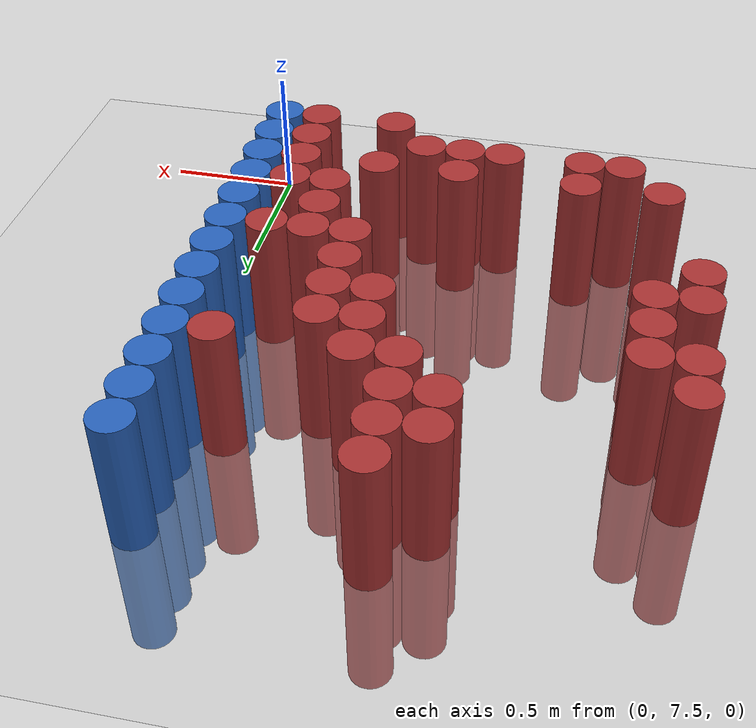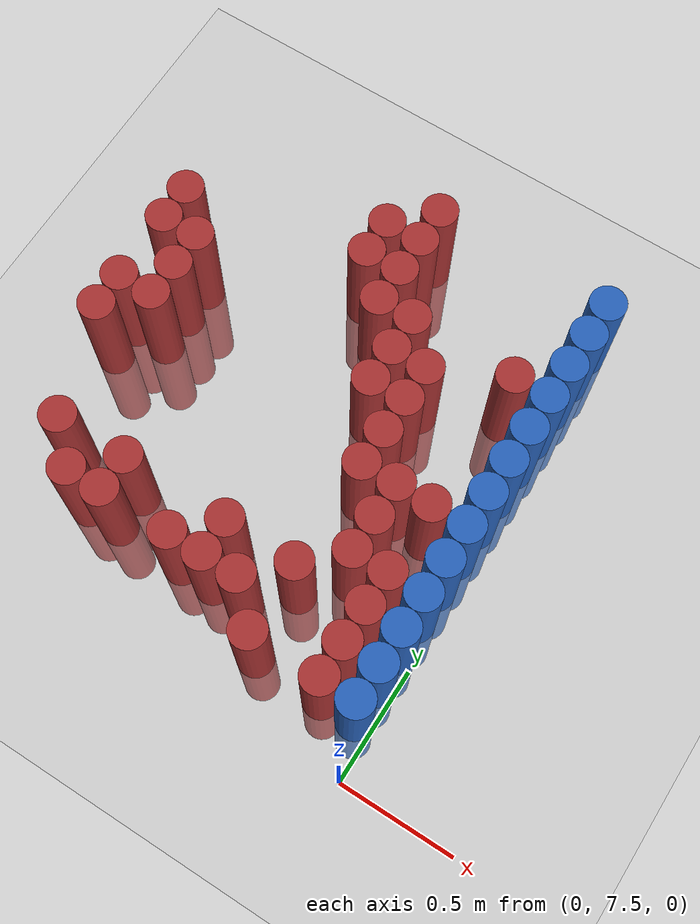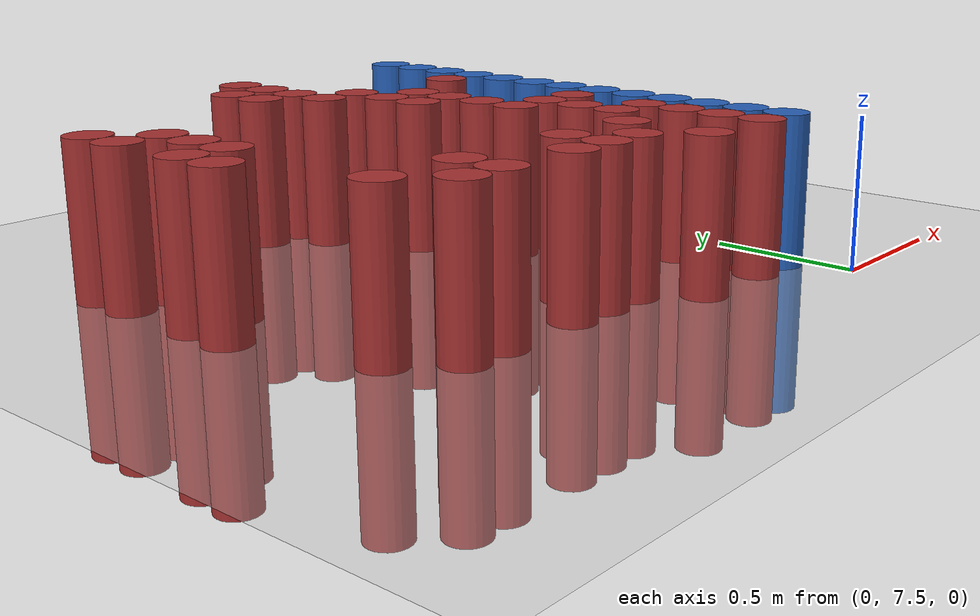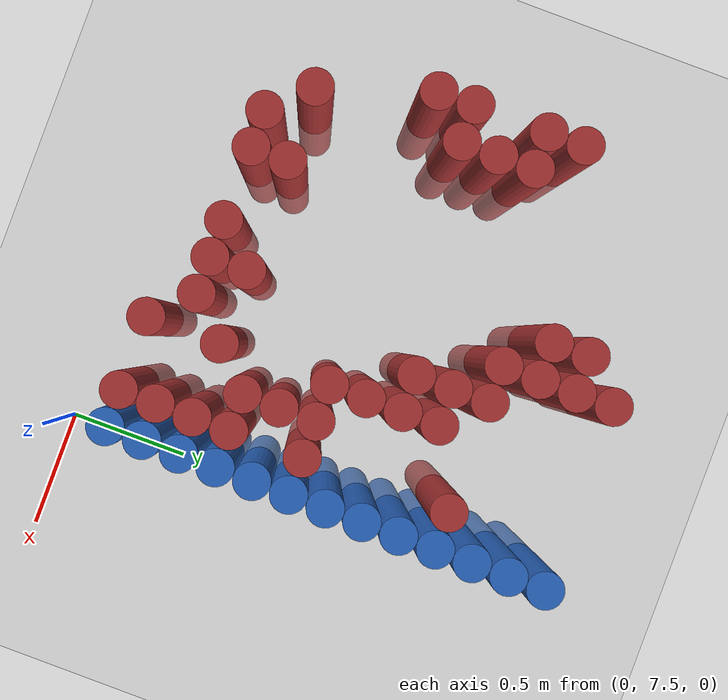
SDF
<sdf version="1.6">
 <world name="default">
  <model name="ground_plane">
   <static>1</static>
   <link name="link">
    <collision name="collision">
     <geometry><plane><normal>0 0 1</normal><size>100 100</size></plane></geometry>
     <surface><friction><ode><mu>100</mu><mu2>50</mu2></ode></friction></surface>
    </collision>
    <visual name="visual">
     <cast_shadows>0</cast_shadows>
     <geometry><plane><normal>0 0 1</normal><size>100 100</size></plane></geometry>
     <material>
      <script><uri>file://media/materials/scripts/gazebo.material</uri><name>Gazebo/Grey</name></script>
     </material>
    </visual>
   </link>
  </model>
  <model name="unit_cylinder_240">
   <static>1</static>
   <pose>-1.725000 8.475000 0.000000 0.000000 0.000000 0.000000</pose>
   <link name="link">
    <inertial>
     <mass>1</mass>
     <inertia><ixx>0.145833</ixx><ixy>0</ixy><ixz>0</ixz><iyy>0.145833</iyy><iyz>0</iyz><izz>0.125</izz></inertia>
    </inertial>
    <collision name="collision">
     <geometry><cylinder><radius>0.075000</radius><length>1</length></cylinder></geometry>
    </collision>
    <visual name="visual">
     <geometry><cylinder><radius>0.075000</radius><length>1</length></cylinder></geometry>
     <material>
      <ambient>0.648000 0.192000 0.192000 1</ambient>
      <diffuse>0.648000 0.192000 0.192000 1</diffuse>
     </material>
     <material>
      <script><name>Gazebo/Grey</name><uri>file://media/materials/scripts/gazebo.material</uri></script>
     </material>
    </visual>
   </link>
  </model>
  <model name="unit_cylinder_241">
   <static>1</static>
   <pose>-1.725000 8.625000 0.000000 0.000000 0.000000 0.000000</pose>
   <link name="link">
    <inertial>
     <mass>1</mass>
     <inertia><ixx>0.145833</ixx><ixy>0</ixy><ixz>0</ixz><iyy>0.145833</iyy><iyz>0</iyz><izz>0.125</izz></inertia>
    </inertial>
    <collision name="collision">
     <geometry><cylinder><radius>0.075000</radius><length>1</length></cylinder></geometry>
    </collision>
    <visual name="visual">
     <geometry><cylinder><radius>0.075000</radius><length>1</length></cylinder></geometry>
     <material>
      <ambient>0.648000 0.192000 0.192000 1</ambient>
      <diffuse>0.648000 0.192000 0.192000 1</diffuse>
     </material>
     <material>
      <script><name>Gazebo/Grey</name><uri>file://media/materials/scripts/gazebo.material</uri></script>
     </material>
    </visual>
   </link>
  </model>
  <model name="unit_cylinder_242">
   <static>1</static>
   <pose>-1.725000 8.925000 0.000000 0.000000 0.000000 0.000000</pose>
   <link name="link">
    <inertial>
     <mass>1</mass>
     <inertia><ixx>0.145833</ixx><ixy>0</ixy><ixz>0</ixz><iyy>0.145833</iyy><iyz>0</iyz><izz>0.125</izz></inertia>
    </inertial>
    <collision name="collision">
     <geometry><cylinder><radius>0.075000</radius><length>1</length></cylinder></geometry>
    </collision>
    <visual name="visual">
     <geometry><cylinder><radius>0.075000</radius><length>1</length></cylinder></geometry>
     <material>
      <ambient>0.648000 0.192000 0.192000 1</ambient>
      <diffuse>0.648000 0.192000 0.192000 1</diffuse>
     </material>
     <material>
      <script><name>Gazebo/Grey</name><uri>file://media/materials/scripts/gazebo.material</uri></script>
     </material>
    </visual>
   </link>
  </model>
  <model name="unit_cylinder_243">
   <static>1</static>
   <pose>-1.725000 9.075000 0.000000 0.000000 0.000000 0.000000</pose>
   <link name="link">
    <inertial>
     <mass>1</mass>
     <inertia><ixx>0.145833</ixx><ixy>0</ixy><ixz>0</ixz><iyy>0.145833</iyy><iyz>0</iyz><izz>0.125</izz></inertia>
    </inertial>
    <collision name="collision">
     <geometry><cylinder><radius>0.075000</radius><length>1</length></cylinder></geometry>
    </collision>
    <visual name="visual">
     <geometry><cylinder><radius>0.075000</radius><length>1</length></cylinder></geometry>
     <material>
      <ambient>0.648000 0.192000 0.192000 1</ambient>
      <diffuse>0.648000 0.192000 0.192000 1</diffuse>
     </material>
     <material>
      <script><name>Gazebo/Grey</name><uri>file://media/materials/scripts/gazebo.material</uri></script>
     </material>
    </visual>
   </link>
  </model>
  <model name="unit_cylinder_246">
   <static>1</static>
   <pose>-1.575000 8.025000 0.000000 0.000000 0.000000 0.000000</pose>
   <link name="link">
    <inertial>
     <mass>1</mass>
     <inertia><ixx>0.145833</ixx><ixy>0</ixy><ixz>0</ixz><iyy>0.145833</iyy><iyz>0</iyz><izz>0.125</izz></inertia>
    </inertial>
    <collision name="collision">
     <geometry><cylinder><radius>0.075000</radius><length>1</length></cylinder></geometry>
    </collision>
    <visual name="visual">
     <geometry><cylinder><radius>0.075000</radius><length>1</length></cylinder></geometry>
     <material>
      <ambient>0.648000 0.192000 0.192000 1</ambient>
      <diffuse>0.648000 0.192000 0.192000 1</diffuse>
     </material>
     <material>
      <script><name>Gazebo/Grey</name><uri>file://media/materials/scripts/gazebo.material</uri></script>
     </material>
    </visual>
   </link>
  </model>
  <model name="unit_cylinder_247">
   <static>1</static>
   <pose>-1.575000 8.625000 0.000000 0.000000 0.000000 0.000000</pose>
   <link name="link">
    <inertial>
     <mass>1</mass>
     <inertia><ixx>0.145833</ixx><ixy>0</ixy><ixz>0</ixz><iyy>0.145833</iyy><iyz>0</iyz><izz>0.125</izz></inertia>
    </inertial>
    <collision name="collision">
     <geometry><cylinder><radius>0.075000</radius><length>1</length></cylinder></geometry>
    </collision>
    <visual name="visual">
     <geometry><cylinder><radius>0.075000</radius><length>1</length></cylinder></geometry>
     <material>
      <ambient>0.648000 0.192000 0.192000 1</ambient>
      <diffuse>0.648000 0.192000 0.192000 1</diffuse>
     </material>
     <material>
      <script><name>Gazebo/Grey</name><uri>file://media/materials/scripts/gazebo.material</uri></script>
     </material>
    </visual>
   </link>
  </model>
  <model name="unit_cylinder_248">
   <static>1</static>
   <pose>-1.575000 8.775000 0.000000 0.000000 0.000000 0.000000</pose>
   <link name="link">
    <inertial>
     <mass>1</mass>
     <inertia><ixx>0.145833</ixx><ixy>0</ixy><ixz>0</ixz><iyy>0.145833</iyy><iyz>0</iyz><izz>0.125</izz></inertia>
    </inertial>
    <collision name="collision">
     <geometry><cylinder><radius>0.075000</radius><length>1</length></cylinder></geometry>
    </collision>
    <visual name="visual">
     <geometry><cylinder><radius>0.075000</radius><length>1</length></cylinder></geometry>
     <material>
      <ambient>0.648000 0.192000 0.192000 1</ambient>
      <diffuse>0.648000 0.192000 0.192000 1</diffuse>
     </material>
     <material>
      <script><name>Gazebo/Grey</name><uri>file://media/materials/scripts/gazebo.material</uri></script>
     </material>
    </visual>
   </link>
  </model>
  <model name="unit_cylinder_249">
   <static>1</static>
   <pose>-1.575000 8.925000 0.000000 0.000000 0.000000 0.000000</pose>
   <link name="link">
    <inertial>
     <mass>1</mass>
     <inertia><ixx>0.145833</ixx><ixy>0</ixy><ixz>0</ixz><iyy>0.145833</iyy><iyz>0</iyz><izz>0.125</izz></inertia>
    </inertial>
    <collision name="collision">
     <geometry><cylinder><radius>0.075000</radius><length>1</length></cylinder></geometry>
    </collision>
    <visual name="visual">
     <geometry><cylinder><radius>0.075000</radius><length>1</length></cylinder></geometry>
     <material>
      <ambient>0.648000 0.192000 0.192000 1</ambient>
      <diffuse>0.648000 0.192000 0.192000 1</diffuse>
     </material>
     <material>
      <script><name>Gazebo/Grey</name><uri>file://media/materials/scripts/gazebo.material</uri></script>
     </material>
    </visual>
   </link>
  </model>
  <model name="unit_cylinder_252">
   <static>1</static>
   <pose>-1.425000 7.875000 0.000000 0.000000 0.000000 0.000000</pose>
   <link name="link">
    <inertial>
     <mass>1</mass>
     <inertia><ixx>0.145833</ixx><ixy>0</ixy><ixz>0</ixz><iyy>0.145833</iyy><iyz>0</iyz><izz>0.125</izz></inertia>
    </inertial>
    <collision name="collision">
     <geometry><cylinder><radius>0.075000</radius><length>1</length></cylinder></geometry>
    </collision>
    <visual name="visual">
     <geometry><cylinder><radius>0.075000</radius><length>1</length></cylinder></geometry>
     <material>
      <ambient>0.648000 0.192000 0.192000 1</ambient>
      <diffuse>0.648000 0.192000 0.192000 1</diffuse>
     </material>
     <material>
      <script><name>Gazebo/Grey</name><uri>file://media/materials/scripts/gazebo.material</uri></script>
     </material>
    </visual>
   </link>
  </model>
  <model name="unit_cylinder_256">
   <static>1</static>
   <pose>-1.275000 7.875000 0.000000 0.000000 0.000000 0.000000</pose>
   <link name="link">
    <inertial>
     <mass>1</mass>
     <inertia><ixx>0.145833</ixx><ixy>0</ixy><ixz>0</ixz><iyy>0.145833</iyy><iyz>0</iyz><izz>0.125</izz></inertia>
    </inertial>
    <collision name="collision">
     <geometry><cylinder><radius>0.075000</radius><length>1</length></cylinder></geometry>
    </collision>
    <visual name="visual">
     <geometry><cylinder><radius>0.075000</radius><length>1</length></cylinder></geometry>
     <material>
      <ambient>0.648000 0.192000 0.192000 1</ambient>
      <diffuse>0.648000 0.192000 0.192000 1</diffuse>
     </material>
     <material>
      <script><name>Gazebo/Grey</name><uri>file://media/materials/scripts/gazebo.material</uri></script>
     </material>
    </visual>
   </link>
  </model>
  <model name="unit_cylinder_257">
   <static>1</static>
   <pose>-1.275000 8.025000 0.000000 0.000000 0.000000 0.000000</pose>
   <link name="link">
    <inertial>
     <mass>1</mass>
     <inertia><ixx>0.145833</ixx><ixy>0</ixy><ixz>0</ixz><iyy>0.145833</iyy><iyz>0</iyz><izz>0.125</izz></inertia>
    </inertial>
    <collision name="collision">
     <geometry><cylinder><radius>0.075000</radius><length>1</length></cylinder></geometry>
    </collision>
    <visual name="visual">
     <geometry><cylinder><radius>0.075000</radius><length>1</length></cylinder></geometry>
     <material>
      <ambient>0.648000 0.192000 0.192000 1</ambient>
      <diffuse>0.648000 0.192000 0.192000 1</diffuse>
     </material>
     <material>
      <script><name>Gazebo/Grey</name><uri>file://media/materials/scripts/gazebo.material</uri></script>
     </material>
    </visual>
   </link>
  </model>
  <model name="unit_cylinder_274">
   <static>1</static>
   <pose>-0.975000 7.875000 0.000000 0.000000 0.000000 0.000000</pose>
   <link name="link">
    <inertial>
     <mass>1</mass>
     <inertia><ixx>0.145833</ixx><ixy>0</ixy><ixz>0</ixz><iyy>0.145833</iyy><iyz>0</iyz><izz>0.125</izz></inertia>
    </inertial>
    <collision name="collision">
     <geometry><cylinder><radius>0.075000</radius><length>1</length></cylinder></geometry>
    </collision>
    <visual name="visual">
     <geometry><cylinder><radius>0.075000</radius><length>1</length></cylinder></geometry>
     <material>
      <ambient>0.648000 0.192000 0.192000 1</ambient>
      <diffuse>0.648000 0.192000 0.192000 1</diffuse>
     </material>
     <material>
      <script><name>Gazebo/Grey</name><uri>file://media/materials/scripts/gazebo.material</uri></script>
     </material>
    </visual>
   </link>
  </model>
  <model name="unit_cylinder_275">
   <static>1</static>
   <pose>-0.975000 9.225000 0.000000 0.000000 0.000000 0.000000</pose>
   <link name="link">
    <inertial>
     <mass>1</mass>
     <inertia><ixx>0.145833</ixx><ixy>0</ixy><ixz>0</ixz><iyy>0.145833</iyy><iyz>0</iyz><izz>0.125</izz></inertia>
    </inertial>
    <collision name="collision">
     <geometry><cylinder><radius>0.075000</radius><length>1</length></cylinder></geometry>
    </collision>
    <visual name="visual">
     <geometry><cylinder><radius>0.075000</radius><length>1</length></cylinder></geometry>
     <material>
      <ambient>0.648000 0.192000 0.192000 1</ambient>
      <diffuse>0.648000 0.192000 0.192000 1</diffuse>
     </material>
     <material>
      <script><name>Gazebo/Grey</name><uri>file://media/materials/scripts/gazebo.material</uri></script>
     </material>
    </visual>
   </link>
  </model>
  <model name="unit_cylinder_276">
   <static>1</static>
   <pose>-0.975000 9.375000 0.000000 0.000000 0.000000 0.000000</pose>
   <link name="link">
    <inertial>
     <mass>1</mass>
     <inertia><ixx>0.145833</ixx><ixy>0</ixy><ixz>0</ixz><iyy>0.145833</iyy><iyz>0</iyz><izz>0.125</izz></inertia>
    </inertial>
    <collision name="collision">
     <geometry><cylinder><radius>0.075000</radius><length>1</length></cylinder></geometry>
    </collision>
    <visual name="visual">
     <geometry><cylinder><radius>0.075000</radius><length>1</length></cylinder></geometry>
     <material>
      <ambient>0.648000 0.192000 0.192000 1</ambient>
      <diffuse>0.648000 0.192000 0.192000 1</diffuse>
     </material>
     <material>
      <script><name>Gazebo/Grey</name><uri>file://media/materials/scripts/gazebo.material</uri></script>
     </material>
    </visual>
   </link>
  </model>
  <model name="unit_cylinder_287">
   <static>1</static>
   <pose>-0.825000 7.875000 0.000000 0.000000 0.000000 0.000000</pose>
   <link name="link">
    <inertial>
     <mass>1</mass>
     <inertia><ixx>0.145833</ixx><ixy>0</ixy><ixz>0</ixz><iyy>0.145833</iyy><iyz>0</iyz><izz>0.125</izz></inertia>
    </inertial>
    <collision name="collision">
     <geometry><cylinder><radius>0.075000</radius><length>1</length></cylinder></geometry>
    </collision>
    <visual name="visual">
     <geometry><cylinder><radius>0.075000</radius><length>1</length></cylinder></geometry>
     <material>
      <ambient>0.648000 0.192000 0.192000 1</ambient>
      <diffuse>0.648000 0.192000 0.192000 1</diffuse>
     </material>
     <material>
      <script><name>Gazebo/Grey</name><uri>file://media/materials/scripts/gazebo.material</uri></script>
     </material>
    </visual>
   </link>
  </model>
  <model name="unit_cylinder_288">
   <static>1</static>
   <pose>-0.825000 8.025000 0.000000 0.000000 0.000000 0.000000</pose>
   <link name="link">
    <inertial>
     <mass>1</mass>
     <inertia><ixx>0.145833</ixx><ixy>0</ixy><ixz>0</ixz><iyy>0.145833</iyy><iyz>0</iyz><izz>0.125</izz></inertia>
    </inertial>
    <collision name="collision">
     <geometry><cylinder><radius>0.075000</radius><length>1</length></cylinder></geometry>
    </collision>
    <visual name="visual">
     <geometry><cylinder><radius>0.075000</radius><length>1</length></cylinder></geometry>
     <material>
      <ambient>0.648000 0.192000 0.192000 1</ambient>
      <diffuse>0.648000 0.192000 0.192000 1</diffuse>
     </material>
     <material>
      <script><name>Gazebo/Grey</name><uri>file://media/materials/scripts/gazebo.material</uri></script>
     </material>
    </visual>
   </link>
  </model>
  <model name="unit_cylinder_289">
   <static>1</static>
   <pose>-0.825000 9.075000 0.000000 0.000000 0.000000 0.000000</pose>
   <link name="link">
    <inertial>
     <mass>1</mass>
     <inertia><ixx>0.145833</ixx><ixy>0</ixy><ixz>0</ixz><iyy>0.145833</iyy><iyz>0</iyz><izz>0.125</izz></inertia>
    </inertial>
    <collision name="collision">
     <geometry><cylinder><radius>0.075000</radius><length>1</length></cylinder></geometry>
    </collision>
    <visual name="visual">
     <geometry><cylinder><radius>0.075000</radius><length>1</length></cylinder></geometry>
     <material>
      <ambient>0.648000 0.192000 0.192000 1</ambient>
      <diffuse>0.648000 0.192000 0.192000 1</diffuse>
     </material>
     <material>
      <script><name>Gazebo/Grey</name><uri>file://media/materials/scripts/gazebo.material</uri></script>
     </material>
    </visual>
   </link>
  </model>
  <model name="unit_cylinder_290">
   <static>1</static>
   <pose>-0.825000 9.225000 0.000000 0.000000 0.000000 0.000000</pose>
   <link name="link">
    <inertial>
     <mass>1</mass>
     <inertia><ixx>0.145833</ixx><ixy>0</ixy><ixz>0</ixz><iyy>0.145833</iyy><iyz>0</iyz><izz>0.125</izz></inertia>
    </inertial>
    <collision name="collision">
     <geometry><cylinder><radius>0.075000</radius><length>1</length></cylinder></geometry>
    </collision>
    <visual name="visual">
     <geometry><cylinder><radius>0.075000</radius><length>1</length></cylinder></geometry>
     <material>
      <ambient>0.648000 0.192000 0.192000 1</ambient>
      <diffuse>0.648000 0.192000 0.192000 1</diffuse>
     </material>
     <material>
      <script><name>Gazebo/Grey</name><uri>file://media/materials/scripts/gazebo.material</uri></script>
     </material>
    </visual>
   </link>
  </model>
  <model name="unit_cylinder_291">
   <static>1</static>
   <pose>-0.825000 9.375000 0.000000 0.000000 0.000000 0.000000</pose>
   <link name="link">
    <inertial>
     <mass>1</mass>
     <inertia><ixx>0.145833</ixx><ixy>0</ixy><ixz>0</ixz><iyy>0.145833</iyy><iyz>0</iyz><izz>0.125</izz></inertia>
    </inertial>
    <collision name="collision">
     <geometry><cylinder><radius>0.075000</radius><length>1</length></cylinder></geometry>
    </collision>
    <visual name="visual">
     <geometry><cylinder><radius>0.075000</radius><length>1</length></cylinder></geometry>
     <material>
      <ambient>0.648000 0.192000 0.192000 1</ambient>
      <diffuse>0.648000 0.192000 0.192000 1</diffuse>
     </material>
     <material>
      <script><name>Gazebo/Grey</name><uri>file://media/materials/scripts/gazebo.material</uri></script>
     </material>
    </visual>
   </link>
  </model>
  <model name="unit_cylinder_292">
   <static>1</static>
   <pose>-0.825000 9.525000 0.000000 0.000000 0.000000 0.000000</pose>
   <link name="link">
    <inertial>
     <mass>1</mass>
     <inertia><ixx>0.145833</ixx><ixy>0</ixy><ixz>0</ixz><iyy>0.145833</iyy><iyz>0</iyz><izz>0.125</izz></inertia>
    </inertial>
    <collision name="collision">
     <geometry><cylinder><radius>0.075000</radius><length>1</length></cylinder></geometry>
    </collision>
    <visual name="visual">
     <geometry><cylinder><radius>0.075000</radius><length>1</length></cylinder></geometry>
     <material>
      <ambient>0.648000 0.192000 0.192000 1</ambient>
      <diffuse>0.648000 0.192000 0.192000 1</diffuse>
     </material>
     <material>
      <script><name>Gazebo/Grey</name><uri>file://media/materials/scripts/gazebo.material</uri></script>
     </material>
    </visual>
   </link>
  </model>
  <model name="unit_cylinder_298">
   <static>1</static>
   <pose>-0.675000 7.875000 0.000000 0.000000 0.000000 0.000000</pose>
   <link name="link">
    <inertial>
     <mass>1</mass>
     <inertia><ixx>0.145833</ixx><ixy>0</ixy><ixz>0</ixz><iyy>0.145833</iyy><iyz>0</iyz><izz>0.125</izz></inertia>
    </inertial>
    <collision name="collision">
     <geometry><cylinder><radius>0.075000</radius><length>1</length></cylinder></geometry>
    </collision>
    <visual name="visual">
     <geometry><cylinder><radius>0.075000</radius><length>1</length></cylinder></geometry>
     <material>
      <ambient>0.648000 0.192000 0.192000 1</ambient>
      <diffuse>0.648000 0.192000 0.192000 1</diffuse>
     </material>
     <material>
      <script><name>Gazebo/Grey</name><uri>file://media/materials/scripts/gazebo.material</uri></script>
     </material>
    </visual>
   </link>
  </model>
  <model name="unit_cylinder_299">
   <static>1</static>
   <pose>-0.675000 8.775000 0.000000 0.000000 0.000000 0.000000</pose>
   <link name="link">
    <inertial>
     <mass>1</mass>
     <inertia><ixx>0.145833</ixx><ixy>0</ixy><ixz>0</ixz><iyy>0.145833</iyy><iyz>0</iyz><izz>0.125</izz></inertia>
    </inertial>
    <collision name="collision">
     <geometry><cylinder><radius>0.075000</radius><length>1</length></cylinder></geometry>
    </collision>
    <visual name="visual">
     <geometry><cylinder><radius>0.075000</radius><length>1</length></cylinder></geometry>
     <material>
      <ambient>0.648000 0.192000 0.192000 1</ambient>
      <diffuse>0.648000 0.192000 0.192000 1</diffuse>
     </material>
     <material>
      <script><name>Gazebo/Grey</name><uri>file://media/materials/scripts/gazebo.material</uri></script>
     </material>
    </visual>
   </link>
  </model>
  <model name="unit_cylinder_300">
   <static>1</static>
   <pose>-0.675000 8.925000 0.000000 0.000000 0.000000 0.000000</pose>
   <link name="link">
    <inertial>
     <mass>1</mass>
     <inertia><ixx>0.145833</ixx><ixy>0</ixy><ixz>0</ixz><iyy>0.145833</iyy><iyz>0</iyz><izz>0.125</izz></inertia>
    </inertial>
    <collision name="collision">
     <geometry><cylinder><radius>0.075000</radius><length>1</length></cylinder></geometry>
    </collision>
    <visual name="visual">
     <geometry><cylinder><radius>0.075000</radius><length>1</length></cylinder></geometry>
     <material>
      <ambient>0.648000 0.192000 0.192000 1</ambient>
      <diffuse>0.648000 0.192000 0.192000 1</diffuse>
     </material>
     <material>
      <script><name>Gazebo/Grey</name><uri>file://media/materials/scripts/gazebo.material</uri></script>
     </material>
    </visual>
   </link>
  </model>
  <model name="unit_cylinder_301">
   <static>1</static>
   <pose>-0.675000 9.075000 0.000000 0.000000 0.000000 0.000000</pose>
   <link name="link">
    <inertial>
     <mass>1</mass>
     <inertia><ixx>0.145833</ixx><ixy>0</ixy><ixz>0</ixz><iyy>0.145833</iyy><iyz>0</iyz><izz>0.125</izz></inertia>
    </inertial>
    <collision name="collision">
     <geometry><cylinder><radius>0.075000</radius><length>1</length></cylinder></geometry>
    </collision>
    <visual name="visual">
     <geometry><cylinder><radius>0.075000</radius><length>1</length></cylinder></geometry>
     <material>
      <ambient>0.648000 0.192000 0.192000 1</ambient>
      <diffuse>0.648000 0.192000 0.192000 1</diffuse>
     </material>
     <material>
      <script><name>Gazebo/Grey</name><uri>file://media/materials/scripts/gazebo.material</uri></script>
     </material>
    </visual>
   </link>
  </model>
  <model name="unit_cylinder_304">
   <static>1</static>
   <pose>-0.525000 7.725000 0.000000 0.000000 0.000000 0.000000</pose>
   <link name="link">
    <inertial>
     <mass>1</mass>
     <inertia><ixx>0.145833</ixx><ixy>0</ixy><ixz>0</ixz><iyy>0.145833</iyy><iyz>0</iyz><izz>0.125</izz></inertia>
    </inertial>
    <collision name="collision">
     <geometry><cylinder><radius>0.075000</radius><length>1</length></cylinder></geometry>
    </collision>
    <visual name="visual">
     <geometry><cylinder><radius>0.075000</radius><length>1</length></cylinder></geometry>
     <material>
      <ambient>0.648000 0.192000 0.192000 1</ambient>
      <diffuse>0.648000 0.192000 0.192000 1</diffuse>
     </material>
     <material>
      <script><name>Gazebo/Grey</name><uri>file://media/materials/scripts/gazebo.material</uri></script>
     </material>
    </visual>
   </link>
  </model>
  <model name="unit_cylinder_305">
   <static>1</static>
   <pose>-0.525000 8.025000 0.000000 0.000000 0.000000 0.000000</pose>
   <link name="link">
    <inertial>
     <mass>1</mass>
     <inertia><ixx>0.145833</ixx><ixy>0</ixy><ixz>0</ixz><iyy>0.145833</iyy><iyz>0</iyz><izz>0.125</izz></inertia>
    </inertial>
    <collision name="collision">
     <geometry><cylinder><radius>0.075000</radius><length>1</length></cylinder></geometry>
    </collision>
    <visual name="visual">
     <geometry><cylinder><radius>0.075000</radius><length>1</length></cylinder></geometry>
     <material>
      <ambient>0.648000 0.192000 0.192000 1</ambient>
      <diffuse>0.648000 0.192000 0.192000 1</diffuse>
     </material>
     <material>
      <script><name>Gazebo/Grey</name><uri>file://media/materials/scripts/gazebo.material</uri></script>
     </material>
    </visual>
   </link>
  </model>
  <model name="unit_cylinder_306">
   <static>1</static>
   <pose>-0.525000 8.475000 0.000000 0.000000 0.000000 0.000000</pose>
   <link name="link">
    <inertial>
     <mass>1</mass>
     <inertia><ixx>0.145833</ixx><ixy>0</ixy><ixz>0</ixz><iyy>0.145833</iyy><iyz>0</iyz><izz>0.125</izz></inertia>
    </inertial>
    <collision name="collision">
     <geometry><cylinder><radius>0.075000</radius><length>1</length></cylinder></geometry>
    </collision>
    <visual name="visual">
     <geometry><cylinder><radius>0.075000</radius><length>1</length></cylinder></geometry>
     <material>
      <ambient>0.648000 0.192000 0.192000 1</ambient>
      <diffuse>0.648000 0.192000 0.192000 1</diffuse>
     </material>
     <material>
      <script><name>Gazebo/Grey</name><uri>file://media/materials/scripts/gazebo.material</uri></script>
     </material>
    </visual>
   </link>
  </model>
  <model name="unit_cylinder_307">
   <static>1</static>
   <pose>-0.525000 8.625000 0.000000 0.000000 0.000000 0.000000</pose>
   <link name="link">
    <inertial>
     <mass>1</mass>
     <inertia><ixx>0.145833</ixx><ixy>0</ixy><ixz>0</ixz><iyy>0.145833</iyy><iyz>0</iyz><izz>0.125</izz></inertia>
    </inertial>
    <collision name="collision">
     <geometry><cylinder><radius>0.075000</radius><length>1</length></cylinder></geometry>
    </collision>
    <visual name="visual">
     <geometry><cylinder><radius>0.075000</radius><length>1</length></cylinder></geometry>
     <material>
      <ambient>0.648000 0.192000 0.192000 1</ambient>
      <diffuse>0.648000 0.192000 0.192000 1</diffuse>
     </material>
     <material>
      <script><name>Gazebo/Grey</name><uri>file://media/materials/scripts/gazebo.material</uri></script>
     </material>
    </visual>
   </link>
  </model>
  <model name="unit_cylinder_308">
   <static>1</static>
   <pose>-0.525000 8.775000 0.000000 0.000000 0.000000 0.000000</pose>
   <link name="link">
    <inertial>
     <mass>1</mass>
     <inertia><ixx>0.145833</ixx><ixy>0</ixy><ixz>0</ixz><iyy>0.145833</iyy><iyz>0</iyz><izz>0.125</izz></inertia>
    </inertial>
    <collision name="collision">
     <geometry><cylinder><radius>0.075000</radius><length>1</length></cylinder></geometry>
    </collision>
    <visual name="visual">
     <geometry><cylinder><radius>0.075000</radius><length>1</length></cylinder></geometry>
     <material>
      <ambient>0.648000 0.192000 0.192000 1</ambient>
      <diffuse>0.648000 0.192000 0.192000 1</diffuse>
     </material>
     <material>
      <script><name>Gazebo/Grey</name><uri>file://media/materials/scripts/gazebo.material</uri></script>
     </material>
    </visual>
   </link>
  </model>
  <model name="unit_cylinder_309">
   <static>1</static>
   <pose>-0.525000 8.925000 0.000000 0.000000 0.000000 0.000000</pose>
   <link name="link">
    <inertial>
     <mass>1</mass>
     <inertia><ixx>0.145833</ixx><ixy>0</ixy><ixz>0</ixz><iyy>0.145833</iyy><iyz>0</iyz><izz>0.125</izz></inertia>
    </inertial>
    <collision name="collision">
     <geometry><cylinder><radius>0.075000</radius><length>1</length></cylinder></geometry>
    </collision>
    <visual name="visual">
     <geometry><cylinder><radius>0.075000</radius><length>1</length></cylinder></geometry>
     <material>
      <ambient>0.648000 0.192000 0.192000 1</ambient>
      <diffuse>0.648000 0.192000 0.192000 1</diffuse>
     </material>
     <material>
      <script><name>Gazebo/Grey</name><uri>file://media/materials/scripts/gazebo.material</uri></script>
     </material>
    </visual>
   </link>
  </model>
  <model name="unit_cylinder_313">
   <static>1</static>
   <pose>-0.375000 8.175000 0.000000 0.000000 0.000000 0.000000</pose>
   <link name="link">
    <inertial>
     <mass>1</mass>
     <inertia><ixx>0.145833</ixx><ixy>0</ixy><ixz>0</ixz><iyy>0.145833</iyy><iyz>0</iyz><izz>0.125</izz></inertia>
    </inertial>
    <collision name="collision">
     <geometry><cylinder><radius>0.075000</radius><length>1</length></cylinder></geometry>
    </collision>
    <visual name="visual">
     <geometry><cylinder><radius>0.075000</radius><length>1</length></cylinder></geometry>
     <material>
      <ambient>0.648000 0.192000 0.192000 1</ambient>
      <diffuse>0.648000 0.192000 0.192000 1</diffuse>
     </material>
     <material>
      <script><name>Gazebo/Grey</name><uri>file://media/materials/scripts/gazebo.material</uri></script>
     </material>
    </visual>
   </link>
  </model>
  <model name="unit_cylinder_314">
   <static>1</static>
   <pose>-0.375000 8.325000 0.000000 0.000000 0.000000 0.000000</pose>
   <link name="link">
    <inertial>
     <mass>1</mass>
     <inertia><ixx>0.145833</ixx><ixy>0</ixy><ixz>0</ixz><iyy>0.145833</iyy><iyz>0</iyz><izz>0.125</izz></inertia>
    </inertial>
    <collision name="collision">
     <geometry><cylinder><radius>0.075000</radius><length>1</length></cylinder></geometry>
    </collision>
    <visual name="visual">
     <geometry><cylinder><radius>0.075000</radius><length>1</length></cylinder></geometry>
     <material>
      <ambient>0.648000 0.192000 0.192000 1</ambient>
      <diffuse>0.648000 0.192000 0.192000 1</diffuse>
     </material>
     <material>
      <script><name>Gazebo/Grey</name><uri>file://media/materials/scripts/gazebo.material</uri></script>
     </material>
    </visual>
   </link>
  </model>
  <model name="unit_cylinder_315">
   <static>1</static>
   <pose>-0.375000 8.475000 0.000000 0.000000 0.000000 0.000000</pose>
   <link name="link">
    <inertial>
     <mass>1</mass>
     <inertia><ixx>0.145833</ixx><ixy>0</ixy><ixz>0</ixz><iyy>0.145833</iyy><iyz>0</iyz><izz>0.125</izz></inertia>
    </inertial>
    <collision name="collision">
     <geometry><cylinder><radius>0.075000</radius><length>1</length></cylinder></geometry>
    </collision>
    <visual name="visual">
     <geometry><cylinder><radius>0.075000</radius><length>1</length></cylinder></geometry>
     <material>
      <ambient>0.648000 0.192000 0.192000 1</ambient>
      <diffuse>0.648000 0.192000 0.192000 1</diffuse>
     </material>
     <material>
      <script><name>Gazebo/Grey</name><uri>file://media/materials/scripts/gazebo.material</uri></script>
     </material>
    </visual>
   </link>
  </model>
  <model name="unit_cylinder_323">
   <static>1</static>
   <pose>-0.225000 7.725000 0.000000 0.000000 0.000000 0.000000</pose>
   <link name="link">
    <inertial>
     <mass>1</mass>
     <inertia><ixx>0.145833</ixx><ixy>0</ixy><ixz>0</ixz><iyy>0.145833</iyy><iyz>0</iyz><izz>0.125</izz></inertia>
    </inertial>
    <collision name="collision">
     <geometry><cylinder><radius>0.075000</radius><length>1</length></cylinder></geometry>
    </collision>
    <visual name="visual">
     <geometry><cylinder><radius>0.075000</radius><length>1</length></cylinder></geometry>
     <material>
      <ambient>0.648000 0.192000 0.192000 1</ambient>
      <diffuse>0.648000 0.192000 0.192000 1</diffuse>
     </material>
     <material>
      <script><name>Gazebo/Grey</name><uri>file://media/materials/scripts/gazebo.material</uri></script>
     </material>
    </visual>
   </link>
  </model>
  <model name="unit_cylinder_324">
   <static>1</static>
   <pose>-0.225000 7.875000 0.000000 0.000000 0.000000 0.000000</pose>
   <link name="link">
    <inertial>
     <mass>1</mass>
     <inertia><ixx>0.145833</ixx><ixy>0</ixy><ixz>0</ixz><iyy>0.145833</iyy><iyz>0</iyz><izz>0.125</izz></inertia>
    </inertial>
    <collision name="collision">
     <geometry><cylinder><radius>0.075000</radius><length>1</length></cylinder></geometry>
    </collision>
    <visual name="visual">
     <geometry><cylinder><radius>0.075000</radius><length>1</length></cylinder></geometry>
     <material>
      <ambient>0.648000 0.192000 0.192000 1</ambient>
      <diffuse>0.648000 0.192000 0.192000 1</diffuse>
     </material>
     <material>
      <script><name>Gazebo/Grey</name><uri>file://media/materials/scripts/gazebo.material</uri></script>
     </material>
    </visual>
   </link>
  </model>
  <model name="unit_cylinder_325">
   <static>1</static>
   <pose>-0.225000 8.025000 0.000000 0.000000 0.000000 0.000000</pose>
   <link name="link">
    <inertial>
     <mass>1</mass>
     <inertia><ixx>0.145833</ixx><ixy>0</ixy><ixz>0</ixz><iyy>0.145833</iyy><iyz>0</iyz><izz>0.125</izz></inertia>
    </inertial>
    <collision name="collision">
     <geometry><cylinder><radius>0.075000</radius><length>1</length></cylinder></geometry>
    </collision>
    <visual name="visual">
     <geometry><cylinder><radius>0.075000</radius><length>1</length></cylinder></geometry>
     <material>
      <ambient>0.648000 0.192000 0.192000 1</ambient>
      <diffuse>0.648000 0.192000 0.192000 1</diffuse>
     </material>
     <material>
      <script><name>Gazebo/Grey</name><uri>file://media/materials/scripts/gazebo.material</uri></script>
     </material>
    </visual>
   </link>
  </model>
  <model name="unit_cylinder_326">
   <static>1</static>
   <pose>-0.225000 8.175000 0.000000 0.000000 0.000000 0.000000</pose>
   <link name="link">
    <inertial>
     <mass>1</mass>
     <inertia><ixx>0.145833</ixx><ixy>0</ixy><ixz>0</ixz><iyy>0.145833</iyy><iyz>0</iyz><izz>0.125</izz></inertia>
    </inertial>
    <collision name="collision">
     <geometry><cylinder><radius>0.075000</radius><length>1</length></cylinder></geometry>
    </collision>
    <visual name="visual">
     <geometry><cylinder><radius>0.075000</radius><length>1</length></cylinder></geometry>
     <material>
      <ambient>0.648000 0.192000 0.192000 1</ambient>
      <diffuse>0.648000 0.192000 0.192000 1</diffuse>
     </material>
     <material>
      <script><name>Gazebo/Grey</name><uri>file://media/materials/scripts/gazebo.material</uri></script>
     </material>
    </visual>
   </link>
  </model>
  <model name="unit_cylinder_327">
   <static>1</static>
   <pose>-0.225000 8.475000 0.000000 0.000000 0.000000 0.000000</pose>
   <link name="link">
    <inertial>
     <mass>1</mass>
     <inertia><ixx>0.145833</ixx><ixy>0</ixy><ixz>0</ixz><iyy>0.145833</iyy><iyz>0</iyz><izz>0.125</izz></inertia>
    </inertial>
    <collision name="collision">
     <geometry><cylinder><radius>0.075000</radius><length>1</length></cylinder></geometry>
    </collision>
    <visual name="visual">
     <geometry><cylinder><radius>0.075000</radius><length>1</length></cylinder></geometry>
     <material>
      <ambient>0.648000 0.192000 0.192000 1</ambient>
      <diffuse>0.648000 0.192000 0.192000 1</diffuse>
     </material>
     <material>
      <script><name>Gazebo/Grey</name><uri>file://media/materials/scripts/gazebo.material</uri></script>
     </material>
    </visual>
   </link>
  </model>
  <model name="unit_cylinder_328">
   <static>1</static>
   <pose>-0.225000 9.075000 0.000000 0.000000 0.000000 0.000000</pose>
   <link name="link">
    <inertial>
     <mass>1</mass>
     <inertia><ixx>0.145833</ixx><ixy>0</ixy><ixz>0</ixz><iyy>0.145833</iyy><iyz>0</iyz><izz>0.125</izz></inertia>
    </inertial>
    <collision name="collision">
     <geometry><cylinder><radius>0.075000</radius><length>1</length></cylinder></geometry>
    </collision>
    <visual name="visual">
     <geometry><cylinder><radius>0.075000</radius><length>1</length></cylinder></geometry>
     <material>
      <ambient>0.648000 0.192000 0.192000 1</ambient>
      <diffuse>0.648000 0.192000 0.192000 1</diffuse>
     </material>
     <material>
      <script><name>Gazebo/Grey</name><uri>file://media/materials/scripts/gazebo.material</uri></script>
     </material>
    </visual>
   </link>
  </model>
  <model name="unit_cylinder_346">
   <static>1</static>
   <pose>-0.075000 7.725000 0.000000 0.000000 0.000000 0.000000</pose>
   <link name="link">
    <inertial>
     <mass>1</mass>
     <inertia><ixx>0.145833</ixx><ixy>0</ixy><ixz>0</ixz><iyy>0.145833</iyy><iyz>0</iyz><izz>0.125</izz></inertia>
    </inertial>
    <collision name="collision">
     <geometry><cylinder><radius>0.075000</radius><length>1</length></cylinder></geometry>
    </collision>
    <visual name="visual">
     <geometry><cylinder><radius>0.075000</radius><length>1</length></cylinder></geometry>
     <material>
      <ambient>0.152000 0.379000 0.720000 1</ambient>
      <diffuse>0.152000 0.379000 0.720000 1</diffuse>
     </material>
     <material>
      <script><name>Gazebo/Grey</name><uri>file://media/materials/scripts/gazebo.material</uri></script>
     </material>
    </visual>
   </link>
  </model>
  <model name="unit_cylinder_347">
   <static>1</static>
   <pose>-0.075000 7.875000 0.000000 0.000000 0.000000 0.000000</pose>
   <link name="link">
    <inertial>
     <mass>1</mass>
     <inertia><ixx>0.145833</ixx><ixy>0</ixy><ixz>0</ixz><iyy>0.145833</iyy><iyz>0</iyz><izz>0.125</izz></inertia>
    </inertial>
    <collision name="collision">
     <geometry><cylinder><radius>0.075000</radius><length>1</length></cylinder></geometry>
    </collision>
    <visual name="visual">
     <geometry><cylinder><radius>0.075000</radius><length>1</length></cylinder></geometry>
     <material>
      <ambient>0.152000 0.379000 0.720000 1</ambient>
      <diffuse>0.152000 0.379000 0.720000 1</diffuse>
     </material>
     <material>
      <script><name>Gazebo/Grey</name><uri>file://media/materials/scripts/gazebo.material</uri></script>
     </material>
    </visual>
   </link>
  </model>
  <model name="unit_cylinder_348">
   <static>1</static>
   <pose>-0.075000 8.025000 0.000000 0.000000 0.000000 0.000000</pose>
   <link name="link">
    <inertial>
     <mass>1</mass>
     <inertia><ixx>0.145833</ixx><ixy>0</ixy><ixz>0</ixz><iyy>0.145833</iyy><iyz>0</iyz><izz>0.125</izz></inertia>
    </inertial>
    <collision name="collision">
     <geometry><cylinder><radius>0.075000</radius><length>1</length></cylinder></geometry>
    </collision>
    <visual name="visual">
     <geometry><cylinder><radius>0.075000</radius><length>1</length></cylinder></geometry>
     <material>
      <ambient>0.152000 0.379000 0.720000 1</ambient>
      <diffuse>0.152000 0.379000 0.720000 1</diffuse>
     </material>
     <material>
      <script><name>Gazebo/Grey</name><uri>file://media/materials/scripts/gazebo.material</uri></script>
     </material>
    </visual>
   </link>
  </model>
  <model name="unit_cylinder_349">
   <static>1</static>
   <pose>-0.075000 8.175000 0.000000 0.000000 0.000000 0.000000</pose>
   <link name="link">
    <inertial>
     <mass>1</mass>
     <inertia><ixx>0.145833</ixx><ixy>0</ixy><ixz>0</ixz><iyy>0.145833</iyy><iyz>0</iyz><izz>0.125</izz></inertia>
    </inertial>
    <collision name="collision">
     <geometry><cylinder><radius>0.075000</radius><length>1</length></cylinder></geometry>
    </collision>
    <visual name="visual">
     <geometry><cylinder><radius>0.075000</radius><length>1</length></cylinder></geometry>
     <material>
      <ambient>0.152000 0.379000 0.720000 1</ambient>
      <diffuse>0.152000 0.379000 0.720000 1</diffuse>
     </material>
     <material>
      <script><name>Gazebo/Grey</name><uri>file://media/materials/scripts/gazebo.material</uri></script>
     </material>
    </visual>
   </link>
  </model>
  <model name="unit_cylinder_350">
   <static>1</static>
   <pose>-0.075000 8.325000 0.000000 0.000000 0.000000 0.000000</pose>
   <link name="link">
    <inertial>
     <mass>1</mass>
     <inertia><ixx>0.145833</ixx><ixy>0</ixy><ixz>0</ixz><iyy>0.145833</iyy><iyz>0</iyz><izz>0.125</izz></inertia>
    </inertial>
    <collision name="collision">
     <geometry><cylinder><radius>0.075000</radius><length>1</length></cylinder></geometry>
    </collision>
    <visual name="visual">
     <geometry><cylinder><radius>0.075000</radius><length>1</length></cylinder></geometry>
     <material>
      <ambient>0.152000 0.379000 0.720000 1</ambient>
      <diffuse>0.152000 0.379000 0.720000 1</diffuse>
     </material>
     <material>
      <script><name>Gazebo/Grey</name><uri>file://media/materials/scripts/gazebo.material</uri></script>
     </material>
    </visual>
   </link>
  </model>
  <model name="unit_cylinder_351">
   <static>1</static>
   <pose>-0.075000 8.475000 0.000000 0.000000 0.000000 0.000000</pose>
   <link name="link">
    <inertial>
     <mass>1</mass>
     <inertia><ixx>0.145833</ixx><ixy>0</ixy><ixz>0</ixz><iyy>0.145833</iyy><iyz>0</iyz><izz>0.125</izz></inertia>
    </inertial>
    <collision name="collision">
     <geometry><cylinder><radius>0.075000</radius><length>1</length></cylinder></geometry>
    </collision>
    <visual name="visual">
     <geometry><cylinder><radius>0.075000</radius><length>1</length></cylinder></geometry>
     <material>
      <ambient>0.152000 0.379000 0.720000 1</ambient>
      <diffuse>0.152000 0.379000 0.720000 1</diffuse>
     </material>
     <material>
      <script><name>Gazebo/Grey</name><uri>file://media/materials/scripts/gazebo.material</uri></script>
     </material>
    </visual>
   </link>
  </model>
  <model name="unit_cylinder_352">
   <static>1</static>
   <pose>-0.075000 8.625000 0.000000 0.000000 0.000000 0.000000</pose>
   <link name="link">
    <inertial>
     <mass>1</mass>
     <inertia><ixx>0.145833</ixx><ixy>0</ixy><ixz>0</ixz><iyy>0.145833</iyy><iyz>0</iyz><izz>0.125</izz></inertia>
    </inertial>
    <collision name="collision">
     <geometry><cylinder><radius>0.075000</radius><length>1</length></cylinder></geometry>
    </collision>
    <visual name="visual">
     <geometry><cylinder><radius>0.075000</radius><length>1</length></cylinder></geometry>
     <material>
      <ambient>0.152000 0.379000 0.720000 1</ambient>
      <diffuse>0.152000 0.379000 0.720000 1</diffuse>
     </material>
     <material>
      <script><name>Gazebo/Grey</name><uri>file://media/materials/scripts/gazebo.material</uri></script>
     </material>
    </visual>
   </link>
  </model>
  <model name="unit_cylinder_353">
   <static>1</static>
   <pose>-0.075000 8.775000 0.000000 0.000000 0.000000 0.000000</pose>
   <link name="link">
    <inertial>
     <mass>1</mass>
     <inertia><ixx>0.145833</ixx><ixy>0</ixy><ixz>0</ixz><iyy>0.145833</iyy><iyz>0</iyz><izz>0.125</izz></inertia>
    </inertial>
    <collision name="collision">
     <geometry><cylinder><radius>0.075000</radius><length>1</length></cylinder></geometry>
    </collision>
    <visual name="visual">
     <geometry><cylinder><radius>0.075000</radius><length>1</length></cylinder></geometry>
     <material>
      <ambient>0.152000 0.379000 0.720000 1</ambient>
      <diffuse>0.152000 0.379000 0.720000 1</diffuse>
     </material>
     <material>
      <script><name>Gazebo/Grey</name><uri>file://media/materials/scripts/gazebo.material</uri></script>
     </material>
    </visual>
   </link>
  </model>
  <model name="unit_cylinder_354">
   <static>1</static>
   <pose>-0.075000 8.925000 0.000000 0.000000 0.000000 0.000000</pose>
   <link name="link">
    <inertial>
     <mass>1</mass>
     <inertia><ixx>0.145833</ixx><ixy>0</ixy><ixz>0</ixz><iyy>0.145833</iyy><iyz>0</iyz><izz>0.125</izz></inertia>
    </inertial>
    <collision name="collision">
     <geometry><cylinder><radius>0.075000</radius><length>1</length></cylinder></geometry>
    </collision>
    <visual name="visual">
     <geometry><cylinder><radius>0.075000</radius><length>1</length></cylinder></geometry>
     <material>
      <ambient>0.152000 0.379000 0.720000 1</ambient>
      <diffuse>0.152000 0.379000 0.720000 1</diffuse>
     </material>
     <material>
      <script><name>Gazebo/Grey</name><uri>file://media/materials/scripts/gazebo.material</uri></script>
     </material>
    </visual>
   </link>
  </model>
  <model name="unit_cylinder_355">
   <static>1</static>
   <pose>-0.075000 9.075000 0.000000 0.000000 0.000000 0.000000</pose>
   <link name="link">
    <inertial>
     <mass>1</mass>
     <inertia><ixx>0.145833</ixx><ixy>0</ixy><ixz>0</ixz><iyy>0.145833</iyy><iyz>0</iyz><izz>0.125</izz></inertia>
    </inertial>
    <collision name="collision">
     <geometry><cylinder><radius>0.075000</radius><length>1</length></cylinder></geometry>
    </collision>
    <visual name="visual">
     <geometry><cylinder><radius>0.075000</radius><length>1</length></cylinder></geometry>
     <material>
      <ambient>0.152000 0.379000 0.720000 1</ambient>
      <diffuse>0.152000 0.379000 0.720000 1</diffuse>
     </material>
     <material>
      <script><name>Gazebo/Grey</name><uri>file://media/materials/scripts/gazebo.material</uri></script>
     </material>
    </visual>
   </link>
  </model>
  <model name="unit_cylinder_356">
   <static>1</static>
   <pose>-0.075000 9.225000 0.000000 0.000000 0.000000 0.000000</pose>
   <link name="link">
    <inertial>
     <mass>1</mass>
     <inertia><ixx>0.145833</ixx><ixy>0</ixy><ixz>0</ixz><iyy>0.145833</iyy><iyz>0</iyz><izz>0.125</izz></inertia>
    </inertial>
    <collision name="collision">
     <geometry><cylinder><radius>0.075000</radius><length>1</length></cylinder></geometry>
    </collision>
    <visual name="visual">
     <geometry><cylinder><radius>0.075000</radius><length>1</length></cylinder></geometry>
     <material>
      <ambient>0.152000 0.379000 0.720000 1</ambient>
      <diffuse>0.152000 0.379000 0.720000 1</diffuse>
     </material>
     <material>
      <script><name>Gazebo/Grey</name><uri>file://media/materials/scripts/gazebo.material</uri></script>
     </material>
    </visual>
   </link>
  </model>
  <model name="unit_cylinder_357">
   <static>1</static>
   <pose>-0.075000 9.375000 0.000000 0.000000 0.000000 0.000000</pose>
   <link name="link">
    <inertial>
     <mass>1</mass>
     <inertia><ixx>0.145833</ixx><ixy>0</ixy><ixz>0</ixz><iyy>0.145833</iyy><iyz>0</iyz><izz>0.125</izz></inertia>
    </inertial>
    <collision name="collision">
     <geometry><cylinder><radius>0.075000</radius><length>1</length></cylinder></geometry>
    </collision>
    <visual name="visual">
     <geometry><cylinder><radius>0.075000</radius><length>1</length></cylinder></geometry>
     <material>
      <ambient>0.152000 0.379000 0.720000 1</ambient>
      <diffuse>0.152000 0.379000 0.720000 1</diffuse>
     </material>
     <material>
      <script><name>Gazebo/Grey</name><uri>file://media/materials/scripts/gazebo.material</uri></script>
     </material>
    </visual>
   </link>
  </model>
  <model name="unit_cylinder_358">
   <static>1</static>
   <pose>-0.075000 9.525000 0.000000 0.000000 0.000000 0.000000</pose>
   <link name="link">
    <inertial>
     <mass>1</mass>
     <inertia><ixx>0.145833</ixx><ixy>0</ixy><ixz>0</ixz><iyy>0.145833</iyy><iyz>0</iyz><izz>0.125</izz></inertia>
    </inertial>
    <collision name="collision">
     <geometry><cylinder><radius>0.075000</radius><length>1</length></cylinder></geometry>
    </collision>
    <visual name="visual">
     <geometry><cylinder><radius>0.075000</radius><length>1</length></cylinder></geometry>
     <material>
      <ambient>0.152000 0.379000 0.720000 1</ambient>
      <diffuse>0.152000 0.379000 0.720000 1</diffuse>
     </material>
     <material>
      <script><name>Gazebo/Grey</name><uri>file://media/materials/scripts/gazebo.material</uri></script>
     </material>
    </visual>
   </link>
  </model>
 </world>
</sdf>
